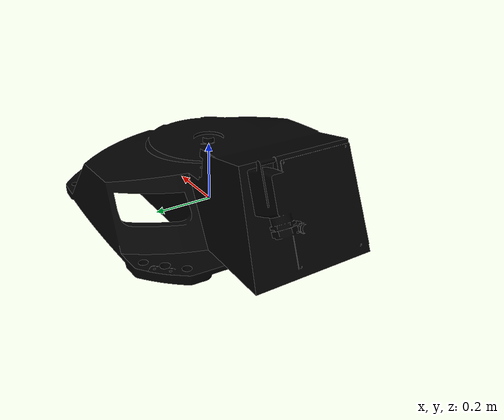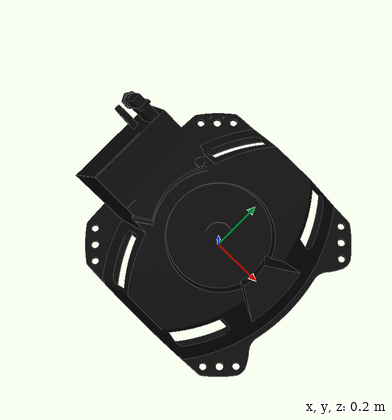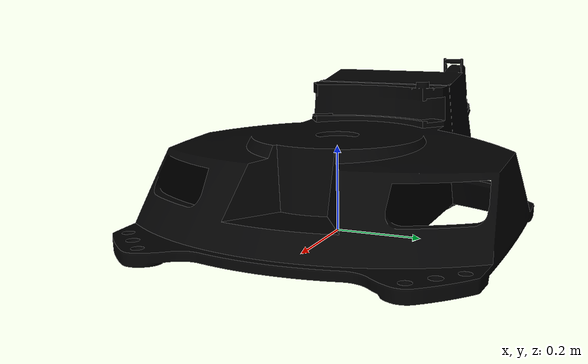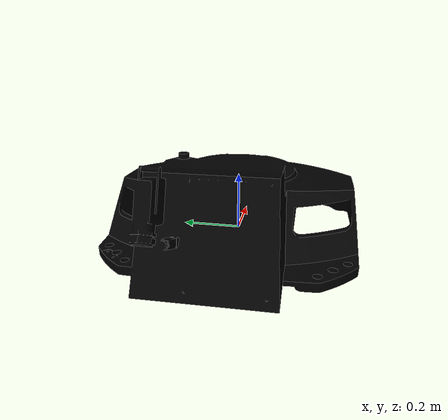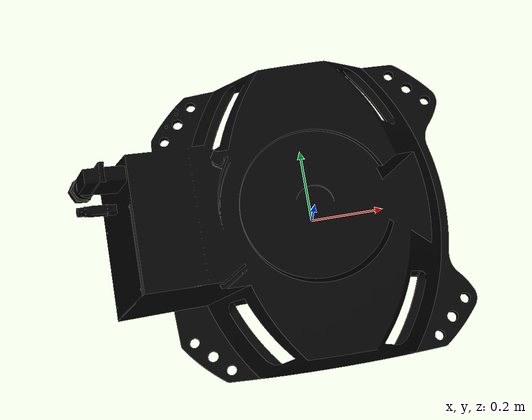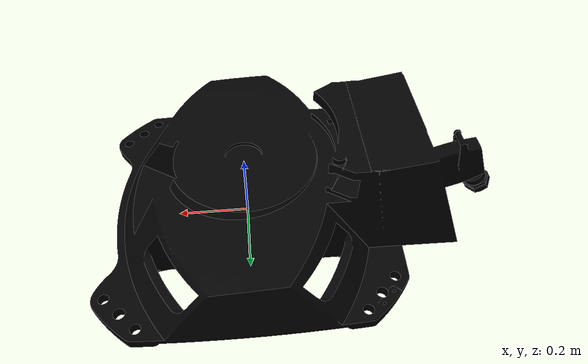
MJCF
<mujoco model="base_link">
  <default>
    <default class="visual">
      <geom group="2" type="mesh" contype="0" conaffinity="0"/>
    </default>
    <default class="collision">
      <geom group="3" type="mesh"/>
    </default>
  </default>
  <asset>
    <material name="RAL9005.002" specular="0.5" shininess="0.25" rgba="0.003513 0.003513 0.004145 1.000000"/>
    <mesh file="base_link.obj"/>
  </asset>
  <worldbody>
    <body name="base_link">
      <geom material="RAL9005.002" mesh="base_link" class="visual"/>
      <geom mesh="base_link" class="collision"/>
    </body>
  </worldbody>
</mujoco>
